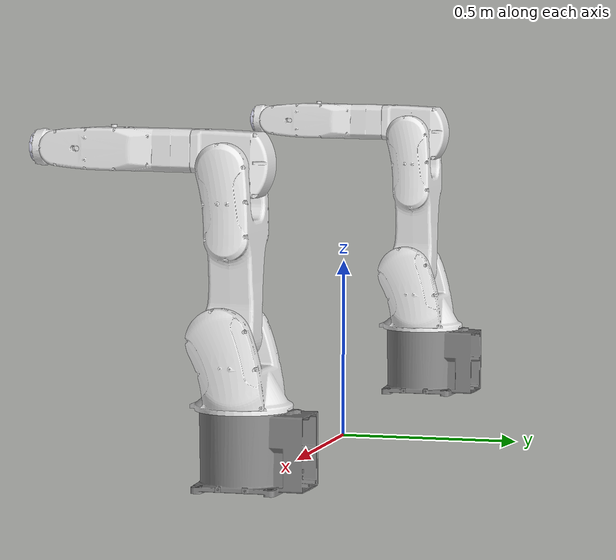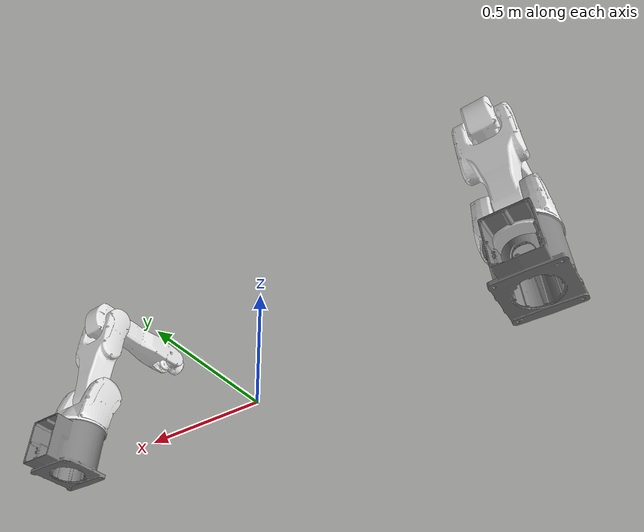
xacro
<?xml version="1.0" ?>
<!-- |    This document was autogenerated by xacro from er7_two_arm_main.urdf.xacro    | -->
<!-- |    EDITING THIS FILE BY HAND IS NOT RECOMMENDED                                 | -->
<robot name="er7robot">
  <!-- 材料定义 -->
  <material name="white">
    <color rgba="0.9 0.9 0.9 1.0"/>
  </material>
  <material name="tool">
    <color rgba="0.8 0.8 0.88 1"/>
  </material>
  <material name="grey">
    <color rgba="0.5 0.5 0.5 1.0"/>
  </material>
  <!-- ================== 可配置参数 ================== -->
  <!-- ================== 宏定义 ================== -->
  <!-- 全局参数 -->
  <!-- 关节参数 -->
  <joint name="camera_base_joint" type="fixed">
    <origin rpy="0 0 -1.57" xyz="-1.0 0 0"/>
    <parent link="base_link"/>
    <child link="camera_base_link"/>
  </joint>
  <link name="camera_base_link">
    <inertial>
      <origin rpy="0 0 0" xyz="-0.026793 -9.7595E-05 0.10245"/>
      <mass value="10.535"/>
      <inertia ixx="0.070003" ixy="1.3701E-05" ixz="-0.00096429" iyy="0.095771" iyz="5.4877E-06" izz="0.088893"/>
    </inertial>
    <visual>
      <origin rpy="0 0 0" xyz="0 0 0"/>
      <geometry>
        <mesh filename="package://er7robot_arm_description/meshes/base_link.stl"/>
      </geometry>
      <material name="grey"/>
    </visual>
    <collision>
      <origin rpy="0 0 0" xyz="0 0 0"/>
      <geometry>
        <mesh filename="package://er7robot_arm_description/meshes/base_link.stl"/>
      </geometry>
    </collision>
  </link>
  <link name="camera_link_1">
    <inertial>
      <origin rpy="0 0 0" xyz="0.011138 0.010138 0.29517"/>
      <mass value="4.2086"/>
      <inertia ixx="0.030054" ixy="-0.00068137" ixz="-0.0043902" iyy="0.032613" iyz="-0.0021869" izz="0.021837"/>
    </inertial>
    <visual>
      <origin rpy="0 0 0" xyz="0 0 0"/>
      <geometry>
        <mesh filename="package://er7robot_arm_description/meshes/link_1.stl"/>
      </geometry>
      <material name="white"/>
    </visual>
    <collision>
      <origin rpy="0 0 0" xyz="0 0 0"/>
      <geometry>
        <mesh filename="package://er7robot_arm_description/meshes/link_1.stl"/>
      </geometry>
    </collision>
  </link>
  <joint name="camera_joint_1" type="revolute">
    <origin rpy="0 0 0" xyz="0 0 0"/>
    <parent link="camera_base_link"/>
    <child link="camera_link_1"/>
    <axis xyz="0 0 -1"/>
    <limit effort="87" lower="-2.96706" upper="2.96706" velocity="2.175"/>
  </joint>
  <link name="camera_link_2">
    <inertial>
      <origin rpy="0 0 0" xyz="0.143 -0.012788 0.0012609"/>
      <mass value="4.7189"/>
      <inertia ixx="0.013281" ixy="0.0027249" ixz="-0.002609" iyy="0.087452" iyz="3.0723E-05" izz="0.088272"/>
    </inertial>
    <visual>
      <origin rpy="0 0 0" xyz="0 0 0"/>
      <geometry>
        <mesh filename="package://er7robot_arm_description/meshes/link_2.stl"/>
      </geometry>
      <material name="white"/>
    </visual>
    <collision>
      <origin rpy="0 0 0" xyz="0 0 0"/>
      <geometry>
        <mesh filename="package://er7robot_arm_description/meshes/link_2.stl"/>
      </geometry>
    </collision>
  </link>
  <joint name="camera_joint_2" type="revolute">
    <origin rpy="-1.5685 -1.5708 0" xyz="0.04 0 0.386"/>
    <parent link="camera_link_1"/>
    <child link="camera_link_2"/>
    <axis xyz="0 0 1"/>
    <limit effort="87" lower="-1.39626" upper="2.35619" velocity="2.175"/>
  </joint>
  <link name="camera_link_3">
    <inertial>
      <origin rpy="0 0 0" xyz="0.018787 -0.024183 -0.005861"/>
      <mass value="1.2995"/>
      <inertia ixx="0.0046013" ixy="0.00046754" ixz="-0.0001967" iyy="0.0041193" iyz="0.00021785" izz="0.0053624"/>
    </inertial>
    <visual>
      <origin rpy="0 0 0" xyz="0 0 0"/>
      <geometry>
        <mesh filename="package://er7robot_arm_description/meshes/link_3.stl"/>
      </geometry>
      <material name="white"/>
    </visual>
    <collision>
      <origin rpy="0 0 0" xyz="0 0 0"/>
      <geometry>
        <mesh filename="package://er7robot_arm_description/meshes/link_3.stl"/>
      </geometry>
    </collision>
  </link>
  <joint name="camera_joint_3" type="revolute">
    <origin rpy="0 0 1.5708" xyz="0.42995 -0.0065869 -1.5401E-05"/>
    <parent link="camera_link_2"/>
    <child link="camera_link_3"/>
    <axis xyz="0 0 1"/>
    <limit effort="87" lower="-3.31613" upper="1.13446" velocity="2.175"/>
  </joint>
  <link name="camera_link_4">
    <inertial>
      <origin rpy="0 0 0" xyz="0.00030569 2.6731E-05 0.15173"/>
      <mass value="3.6259"/>
      <inertia ixx="0.013688" ixy="-2.77E-07" ixz="-0.00013787" iyy="0.013904" iyz="-5.1113E-06" izz="0.006922"/>
    </inertial>
    <visual>
      <origin rpy="0 0 0" xyz="0 0 0"/>
      <geometry>
        <mesh filename="package://er7robot_arm_description/meshes/link_4.stl"/>
      </geometry>
      <material name="white"/>
    </visual>
    <collision>
      <origin rpy="0 0 0" xyz="0 0 0"/>
      <geometry>
        <mesh filename="package://er7robot_arm_description/meshes/link_4.stl"/>
      </geometry>
    </collision>
  </link>
  <joint name="camera_joint_4" type="revolute">
    <origin rpy="-1.5708 -1.5708 -1.5847" xyz="0.094433 -0.041321 -7.8123E-05"/>
    <parent link="camera_link_3"/>
    <child link="camera_link_4"/>
    <axis xyz="0 0 -1"/>
    <limit effort="87" lower="-3.31613" upper="3.31613" velocity="2.175"/>
  </joint>
  <link name="camera_link_5">
    <inertial>
      <origin rpy="0 0 0" xyz="0.022976 -0.00016218 -0.0068804"/>
      <mass value="0.49222"/>
      <inertia ixx="0.00055117" ixy="1.7465E-06" ixz="-4.3677E-05" iyy="0.00056711" iyz="4.2405E-07" izz="0.00051329"/>
    </inertial>
    <visual>
      <origin rpy="0 0 0" xyz="0 0 0"/>
      <geometry>
        <mesh filename="package://er7robot_arm_description/meshes/link_5.stl"/>
      </geometry>
      <material name="white"/>
    </visual>
    <collision>
      <origin rpy="0 0 0" xyz="0 0 0"/>
      <geometry>
        <mesh filename="package://er7robot_arm_description/meshes/link_5.stl"/>
      </geometry>
    </collision>
  </link>
  <joint name="camera_joint_5" type="revolute">
    <origin rpy="-1.5708 -1.5522 -1.5679" xyz="0.0011172 0 0.35"/>
    <parent link="camera_link_4"/>
    <child link="camera_link_5"/>
    <axis xyz="-8.7448E-05 0 1"/>
    <limit effort="87" lower="-2.0944" upper="2.0944" velocity="2.175"/>
  </joint>
  <link name="camera_link_6">
    <inertial>
      <origin rpy="0 0 0" xyz="5.908E-06 -5.9257E-05 -0.01015"/>
      <mass value="0.039799"/>
      <inertia ixx="1.3325E-05" ixy="-2.2942E-10" ixz="8.8798E-10" iyy="1.3251E-05" iyz="-2.1481E-09" izz="2.5479E-05"/>
    </inertial>
    <visual>
      <origin rpy="0 0 0" xyz="0 0 0"/>
      <geometry>
        <mesh filename="package://er7robot_arm_description/meshes/link_6.stl"/>
      </geometry>
      <material name="tool"/>
    </visual>
    <collision>
      <origin rpy="0 0 0" xyz="0 0 0"/>
      <geometry>
        <mesh filename="package://er7robot_arm_description/meshes/link_6.stl"/>
      </geometry>
    </collision>
  </link>
  <joint name="camera_joint_6" type="revolute">
    <origin rpy="1.5708 0.0 1.5708" xyz="0.085996 0 -0.0011172"/>
    <parent link="camera_link_5"/>
    <child link="camera_link_6"/>
    <axis xyz="0 0 -1"/>
    <limit effort="87" lower="-6.28319" upper="6.28319" velocity="2.175"/>
  </joint>

  <joint name="laser_base_joint" type="fixed">
    <origin rpy="0 0 -1.57" xyz="1.0 0 0"/>
    <parent link="base_link"/>
    <child link="laser_base_link"/>
  </joint>
  <link name="laser_base_link">
    <inertial>
      <origin rpy="0 0 0" xyz="-0.026793 -9.7595E-05 0.10245"/>
      <mass value="10.535"/>
      <inertia ixx="0.070003" ixy="1.3701E-05" ixz="-0.00096429" iyy="0.095771" iyz="5.4877E-06" izz="0.088893"/>
    </inertial>
    <visual>
      <origin rpy="0 0 0" xyz="0 0 0"/>
      <geometry>
        <mesh filename="package://er7robot_arm_description/meshes/base_link.stl"/>
      </geometry>
      <material name="grey"/>
    </visual>
    <collision>
      <origin rpy="0 0 0" xyz="0 0 0"/>
      <geometry>
        <mesh filename="package://er7robot_arm_description/meshes/base_link.stl"/>
      </geometry>
    </collision>
  </link>
  <link name="laser_link_1">
    <inertial>
      <origin rpy="0 0 0" xyz="0.011138 0.010138 0.29517"/>
      <mass value="4.2086"/>
      <inertia ixx="0.030054" ixy="-0.00068137" ixz="-0.0043902" iyy="0.032613" iyz="-0.0021869" izz="0.021837"/>
    </inertial>
    <visual>
      <origin rpy="0 0 0" xyz="0 0 0"/>
      <geometry>
        <mesh filename="package://er7robot_arm_description/meshes/link_1.stl"/>
      </geometry>
      <material name="white"/>
    </visual>
    <collision>
      <origin rpy="0 0 0" xyz="0 0 0"/>
      <geometry>
        <mesh filename="package://er7robot_arm_description/meshes/link_1.stl"/>
      </geometry>
    </collision>
  </link>
  <joint name="laser_joint_1" type="revolute">
    <origin rpy="0 0 0" xyz="0 0 0"/>
    <parent link="laser_base_link"/>
    <child link="laser_link_1"/>
    <axis xyz="0 0 -1"/>
    <limit effort="87" lower="-2.96706" upper="2.96706" velocity="2.175"/>
  </joint>
  <link name="laser_link_2">
    <inertial>
      <origin rpy="0 0 0" xyz="0.143 -0.012788 0.0012609"/>
      <mass value="4.7189"/>
      <inertia ixx="0.013281" ixy="0.0027249" ixz="-0.002609" iyy="0.087452" iyz="3.0723E-05" izz="0.088272"/>
    </inertial>
    <visual>
      <origin rpy="0 0 0" xyz="0 0 0"/>
      <geometry>
        <mesh filename="package://er7robot_arm_description/meshes/link_2.stl"/>
      </geometry>
      <material name="white"/>
    </visual>
    <collision>
      <origin rpy="0 0 0" xyz="0 0 0"/>
      <geometry>
        <mesh filename="package://er7robot_arm_description/meshes/link_2.stl"/>
      </geometry>
    </collision>
  </link>
  <joint name="laser_joint_2" type="revolute">
    <origin rpy="-1.5685 -1.5708 0" xyz="0.04 0 0.386"/>
    <parent link="laser_link_1"/>
    <child link="laser_link_2"/>
    <axis xyz="0 0 1"/>
    <limit effort="87" lower="-1.39626" upper="2.35619" velocity="2.175"/>
  </joint>
  <link name="laser_link_3">
    <inertial>
      <origin rpy="0 0 0" xyz="0.018787 -0.024183 -0.005861"/>
      <mass value="1.2995"/>
      <inertia ixx="0.0046013" ixy="0.00046754" ixz="-0.0001967" iyy="0.0041193" iyz="0.00021785" izz="0.0053624"/>
    </inertial>
    <visual>
      <origin rpy="0 0 0" xyz="0 0 0"/>
      <geometry>
        <mesh filename="package://er7robot_arm_description/meshes/link_3.stl"/>
      </geometry>
      <material name="white"/>
    </visual>
    <collision>
      <origin rpy="0 0 0" xyz="0 0 0"/>
      <geometry>
        <mesh filename="package://er7robot_arm_description/meshes/link_3.stl"/>
      </geometry>
    </collision>
  </link>
  <joint name="laser_joint_3" type="revolute">
    <origin rpy="0 0 1.5708" xyz="0.42995 -0.0065869 -1.5401E-05"/>
    <parent link="laser_link_2"/>
    <child link="laser_link_3"/>
    <axis xyz="0 0 1"/>
    <limit effort="87" lower="-3.31613" upper="1.13446" velocity="2.175"/>
  </joint>
  <link name="laser_link_4">
    <inertial>
      <origin rpy="0 0 0" xyz="0.00030569 2.6731E-05 0.15173"/>
      <mass value="3.6259"/>
      <inertia ixx="0.013688" ixy="-2.77E-07" ixz="-0.00013787" iyy="0.013904" iyz="-5.1113E-06" izz="0.006922"/>
    </inertial>
    <visual>
      <origin rpy="0 0 0" xyz="0 0 0"/>
      <geometry>
        <mesh filename="package://er7robot_arm_description/meshes/link_4.stl"/>
      </geometry>
      <material name="white"/>
    </visual>
    <collision>
      <origin rpy="0 0 0" xyz="0 0 0"/>
      <geometry>
        <mesh filename="package://er7robot_arm_description/meshes/link_4.stl"/>
      </geometry>
    </collision>
  </link>
  <joint name="laser_joint_4" type="revolute">
    <origin rpy="-1.5708 -1.5708 -1.5847" xyz="0.094433 -0.041321 -7.8123E-05"/>
    <parent link="laser_link_3"/>
    <child link="laser_link_4"/>
    <axis xyz="0 0 -1"/>
    <limit effort="87" lower="-3.31613" upper="3.31613" velocity="2.175"/>
  </joint>
  <link name="laser_link_5">
    <inertial>
      <origin rpy="0 0 0" xyz="0.022976 -0.00016218 -0.0068804"/>
      <mass value="0.49222"/>
      <inertia ixx="0.00055117" ixy="1.7465E-06" ixz="-4.3677E-05" iyy="0.00056711" iyz="4.2405E-07" izz="0.00051329"/>
    </inertial>
    <visual>
      <origin rpy="0 0 0" xyz="0 0 0"/>
      <geometry>
        <mesh filename="package://er7robot_arm_description/meshes/link_5.stl"/>
      </geometry>
      <material name="white"/>
    </visual>
    <collision>
      <origin rpy="0 0 0" xyz="0 0 0"/>
      <geometry>
        <mesh filename="package://er7robot_arm_description/meshes/link_5.stl"/>
      </geometry>
    </collision>
  </link>
  <joint name="laser_joint_5" type="revolute">
    <origin rpy="-1.5708 -1.5522 -1.5679" xyz="0.0011172 0 0.35"/>
    <parent link="laser_link_4"/>
    <child link="laser_link_5"/>
    <axis xyz="-8.7448E-05 0 1"/>
    <limit effort="87" lower="-2.0944" upper="2.0944" velocity="2.175"/>
  </joint>
  <link name="laser_link_6">
    <inertial>
      <origin rpy="0 0 0" xyz="5.908E-06 -5.9257E-05 -0.01015"/>
      <mass value="0.039799"/>
      <inertia ixx="1.3325E-05" ixy="-2.2942E-10" ixz="8.8798E-10" iyy="1.3251E-05" iyz="-2.1481E-09" izz="2.5479E-05"/>
    </inertial>
    <visual>
      <origin rpy="0 0 0" xyz="0 0 0"/>
      <geometry>
        <mesh filename="package://er7robot_arm_description/meshes/link_6.stl"/>
      </geometry>
      <material name="tool"/>
    </visual>
    <collision>
      <origin rpy="0 0 0" xyz="0 0 0"/>
      <geometry>
        <mesh filename="package://er7robot_arm_description/meshes/link_6.stl"/>
      </geometry>
    </collision>
  </link>
  <joint name="laser_joint_6" type="revolute">
    <origin rpy="1.5708 0.0 1.5708" xyz="0.085996 0 -0.0011172"/>
    <parent link="laser_link_5"/>
    <child link="laser_link_6"/>
    <axis xyz="0 0 -1"/>
    <limit effort="87" lower="-6.28319" upper="6.28319" velocity="2.175"/>
  </joint>
  <!-- ================== 控制接口 ================== -->
  <ros2_control name="dual_arm_er7_ros2_control" type="system">
    <hardware>
      <plugin>gazebo_ros2_control/GazeboSystem</plugin>
    </hardware>
    <joint name="camera_joint_1">
      <command_interface name="position">
        <param name="min">-2.96706</param>
        <param name="max">2.96706</param>
      </command_interface>
      <command_interface name="velocity">
        <param name="min">-2.1750</param>
        <param name="max">2.1750</param>
      </command_interface>
      <state_interface name="position"/>
      <state_interface name="velocity"/>
      <state_interface name="effort"/>
    </joint>
    <joint name="camera_joint_2">
      <command_interface name="position">
        <param name="min">-1.39626</param>
        <param name="max">2.35619</param>
      </command_interface>
      <command_interface name="velocity">
        <param name="min">-2.1750</param>
        <param name="max">2.1750</param>
      </command_interface>
      <state_interface name="position"/>
      <state_interface name="velocity"/>
      <state_interface name="effort"/>
    </joint>
    <joint name="camera_joint_3">
      <command_interface name="position">
        <param name="min">-3.31613</param>
        <param name="max">1.13446</param>
      </command_interface>
      <command_interface name="velocity">
        <param name="min">-2.1750</param>
        <param name="max">2.1750</param>
      </command_interface>
      <state_interface name="position"/>
      <state_interface name="velocity"/>
      <state_interface name="effort"/>
    </joint>
    <joint name="camera_joint_4">
      <command_interface name="position">
        <param name="min">-3.31613</param>
        <param name="max">3.31613</param>
      </command_interface>
      <command_interface name="velocity">
        <param name="min">-2.1750</param>
        <param name="max">2.1750</param>
      </command_interface>
      <state_interface name="position"/>
      <state_interface name="velocity"/>
      <state_interface name="effort"/>
    </joint>
    <joint name="camera_joint_5">
      <command_interface name="position">
        <param name="min">-2.09440</param>
        <param name="max">2.09440</param>
      </command_interface>
      <command_interface name="velocity">
        <param name="min">-2.1750</param>
        <param name="max">2.1750</param>
      </command_interface>
      <state_interface name="position"/>
      <state_interface name="velocity"/>
      <state_interface name="effort"/>
    </joint>
    <joint name="camera_joint_6">
      <command_interface name="position">
        <param name="min">-6.28319</param>
        <param name="max">6.28319</param>
      </command_interface>
      <command_interface name="velocity">
        <param name="min">-2.1750</param>
        <param name="max">2.1750</param>
      </command_interface>
      <state_interface name="position"/>
      <state_interface name="velocity"/>
      <state_interface name="effort"/>
    </joint>

    <joint name="laser_joint_1">
      <command_interface name="position">
        <param name="min">-2.96706</param>
        <param name="max">2.96706</param>
      </command_interface>
      <command_interface name="velocity">
        <param name="min">-2.1750</param>
        <param name="max">2.1750</param>
      </command_interface>
      <state_interface name="position"/>
      <state_interface name="velocity"/>
      <state_interface name="effort"/>
    </joint>
    <joint name="laser_joint_2">
      <command_interface name="position">
        <param name="min">-1.39626</param>
        <param name="max">2.35619</param>
      </command_interface>
      <command_interface name="velocity">
        <param name="min">-2.1750</param>
        <param name="max">2.1750</param>
      </command_interface>
      <state_interface name="position"/>
      <state_interface name="velocity"/>
      <state_interface name="effort"/>
    </joint>
    <joint name="laser_joint_3">
      <command_interface name="position">
        <param name="min">-3.31613</param>
        <param name="max">1.13446</param>
      </command_interface>
      <command_interface name="velocity">
        <param name="min">-2.1750</param>
        <param name="max">2.1750</param>
      </command_interface>
      <state_interface name="position"/>
      <state_interface name="velocity"/>
      <state_interface name="effort"/>
    </joint>
    <joint name="laser_joint_4">
      <command_interface name="position">
        <param name="min">-3.31613</param>
        <param name="max">3.31613</param>
      </command_interface>
      <command_interface name="velocity">
        <param name="min">-2.1750</param>
        <param name="max">2.1750</param>
      </command_interface>
      <state_interface name="position"/>
      <state_interface name="velocity"/>
      <state_interface name="effort"/>
    </joint>
    <joint name="laser_joint_5">
      <command_interface name="position">
        <param name="min">-2.09440</param>
        <param name="max">2.09440</param>
      </command_interface>
      <command_interface name="velocity">
        <param name="min">-2.1750</param>
        <param name="max">2.1750</param>
      </command_interface>
      <state_interface name="position"/>
      <state_interface name="velocity"/>
      <state_interface name="effort"/>
    </joint>
    <joint name="laser_joint_6">
      <command_interface name="position">
        <param name="min">-6.28319</param>
        <param name="max">6.28319</param>
      </command_interface>
      <command_interface name="velocity">
        <param name="min">-2.1750</param>
        <param name="max">2.1750</param>
      </command_interface>
      <state_interface name="position"/>
      <state_interface name="velocity"/>
      <state_interface name="effort"/>
    </joint>
  </ros2_control>

  <link name="base_link"/>
  <gazebo>
    <plugin filename="libgazebo_ros2_control.so" name="gazebo_ros2_control">
      <!--launch controller manager to manage joint_state_boardcaster and my_arm_group_controller-->
      <parameters>$(find er7robot_two_arm_moveit_config)/config/ros2_controllers.yaml</parameters>
      <!--declare where to get robot_description-->
      <robot_param_node>robot_state_publisher</robot_param_node>
    </plugin>
  </gazebo>
</robot>
